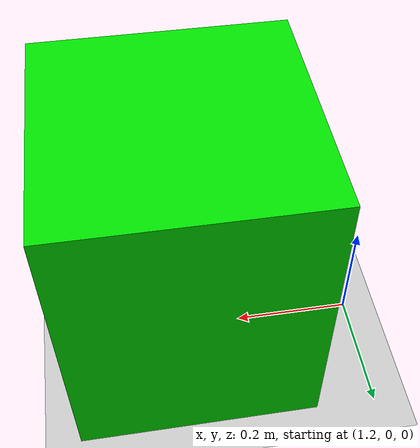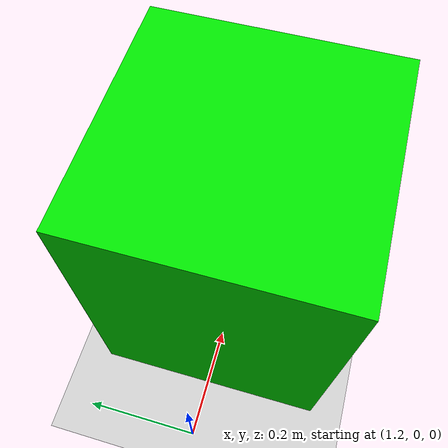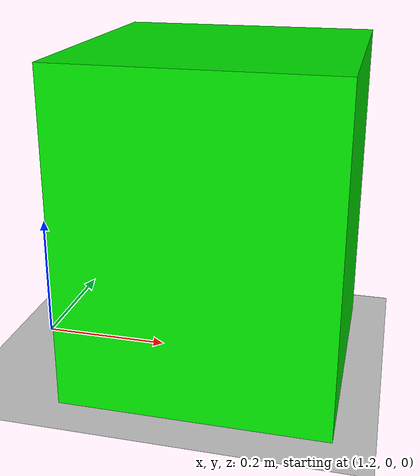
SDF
<?xml version="1.0" ?>
<sdf version="1.6">
  <world name="vision_follow_world">
    <gravity>0 0 -9.81</gravity>
    <magnetic_field>0 0 0.0</magnetic_field>
    <atmosphere type="adiabatic"/>

    <light name="sun" type="directional">
      <pose>0 0 10 0 0 0</pose>
      <diffuse>1 1 1 1</diffuse>
      <specular>.1 .1 .1 1</specular>
      <attenuation>
        <range>1000</range>
        <constant>0.9</constant>
        <linear>0.01</linear>
        <quadratic>0.001</quadratic>
      </attenuation>
      <direction>-0.5 0.1 -0.9</direction>
      <cast_shadows>true</cast_shadows>
    </light>

    <model name="ground_plane">
      <static>true</static>
      <link name="link">
        <collision name="collision">
          <geometry>
            <plane>
              <normal>0 0 1</normal>
              <size>100 100</size>
            </plane>
          </geometry>
        </collision>
        <visual name="visual">
          <geometry>
            <plane>
              <normal>0 0 1</normal>
              <size>100 100</size>
            </plane>
          </geometry>
          <material>
            <script>
              <uri>file://media/materials/scripts/gazebo.material</uri>
              <name>Gazebo/Grey</name>
            </script>
          </material>
        </visual>
      </link>
    </model>

    <model name="target_block">
      <static>true</static>
      <pose>1.5 0 0.25 0 0 0</pose>
      <link name="link">
        <collision name="collision">
          <geometry>
            <box>
              <size>0.4 0.4 0.5</size>
            </box>
          </geometry>
        </collision>
        <visual name="visual">
          <geometry>
            <box>
              <size>0.4 0.4 0.5</size>
            </box>
          </geometry>
          <material>
            <ambient>0 0.9 0 1</ambient>
            <diffuse>0 0.9 0 1</diffuse>
            <specular>0.1 0.1 0.1 1</specular>
          </material>
        </visual>
      </link>
    </model>
  </world>
</sdf>
